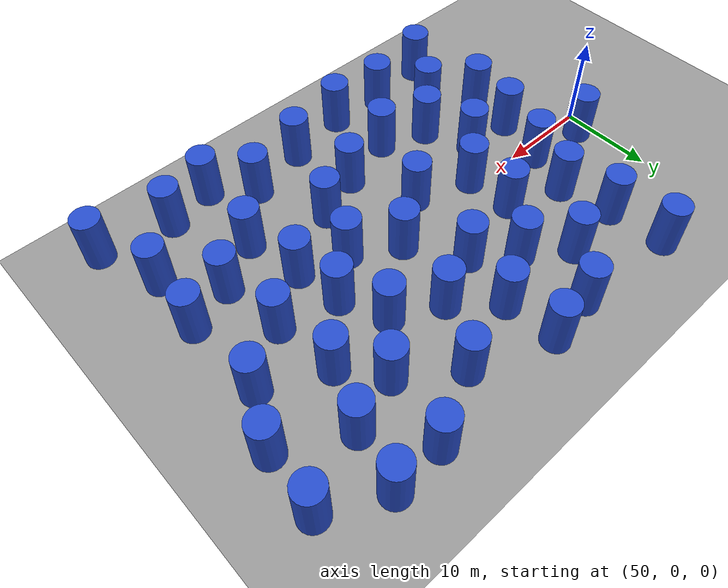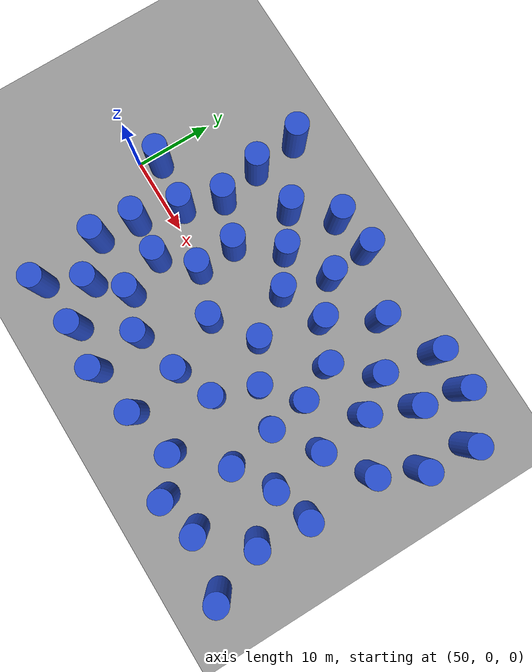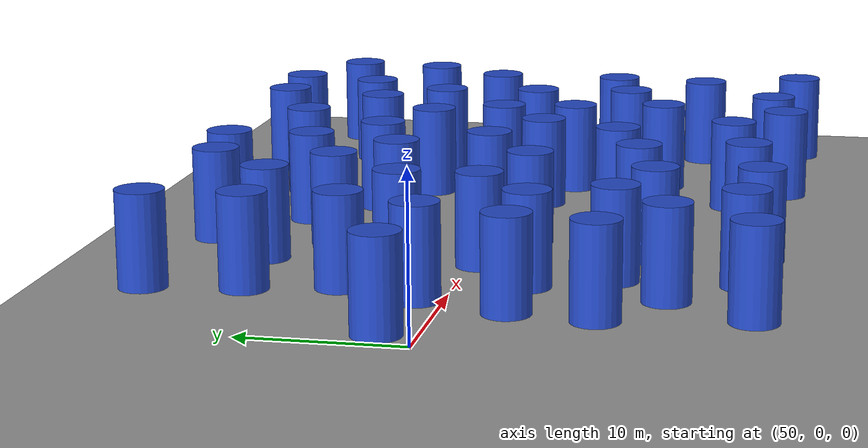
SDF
<sdf version="1.7">
 <world name="default">
  <model name="ground_plane_map">
   <static>1</static>
   <link name="link">
    <collision name="collision">
     <geometry><plane><normal>0 0 1</normal><size>110 50</size></plane></geometry>
     <surface>
      <contact><collide_without_contact>1</collide_without_contact></contact>
      <friction><ode><mu>100</mu><mu2>50</mu2></ode></friction>
     </surface>
    </collision>
    <visual name="visual">
     <cast_shadows>0</cast_shadows>
     <geometry><plane><normal>0 0 1</normal><size>110 50</size></plane></geometry>
     <material>
      <script><uri>file://media/materials/scripts/gazebo.material</uri><name>Gazebo/Grey</name></script>
     </material>
    </visual>
   </link>
   <pose>53 0 0 0 -0 0</pose>
  </model>
  <model name="1">
   <static>1</static>
   <link name="link">
    <inertial>
     <mass>2</mass>
     <inertia><ixx>7.125</ixx><ixy>0</ixy><ixz>0</ixz><iyy>7.125</iyy><iyz>0</iyz><izz>2.25</izz></inertia>
    </inertial>
    <collision name="collision">
     <geometry><cylinder><length>6</length><radius>1.5</radius></cylinder></geometry>
     <surface><contact><collide_without_contact>1</collide_without_contact></contact></surface>
    </collision>
    <visual name="visual">
     <geometry><cylinder><length>6</length><radius>1.5</radius></cylinder></geometry>
     <material>
      <script><uri>file://media/materials/scripts/gazebo.material</uri><name>Gazebo/Blue</name></script>
     </material>
    </visual>
    <gravity>0</gravity>
   </link>
   <pose>80.5285 -7.27743 3 0 -0 0</pose>
  </model>
  <model name="2">
   <static>1</static>
   <link name="link">
    <inertial>
     <mass>2</mass>
     <inertia><ixx>7.125</ixx><ixy>0</ixy><ixz>0</ixz><iyy>7.125</iyy><iyz>0</iyz><izz>2.25</izz></inertia>
    </inertial>
    <collision name="collision">
     <geometry><cylinder><length>6</length><radius>1.5</radius></cylinder></geometry>
     <surface><contact><collide_without_contact>1</collide_without_contact></contact></surface>
    </collision>
    <visual name="visual">
     <geometry><cylinder><length>6</length><radius>1.5</radius></cylinder></geometry>
     <material>
      <script><uri>file://media/materials/scripts/gazebo.material</uri><name>Gazebo/Blue</name></script>
     </material>
    </visual>
    <gravity>0</gravity>
   </link>
   <pose>92.587 0.173414 3 0 -0 0</pose>
  </model>
  <model name="3">
   <static>1</static>
   <link name="link">
    <inertial>
     <mass>2</mass>
     <inertia><ixx>7.125</ixx><ixy>0</ixy><ixz>0</ixz><iyy>7.125</iyy><iyz>0</iyz><izz>2.25</izz></inertia>
    </inertial>
    <collision name="collision">
     <geometry><cylinder><length>6</length><radius>1.5</radius></cylinder></geometry>
     <surface><contact><collide_without_contact>1</collide_without_contact></contact></surface>
    </collision>
    <visual name="visual">
     <geometry><cylinder><length>6</length><radius>1.5</radius></cylinder></geometry>
     <material>
      <script><uri>file://media/materials/scripts/gazebo.material</uri><name>Gazebo/Blue</name></script>
     </material>
    </visual>
    <gravity>0</gravity>
   </link>
   <pose>64.4818 -9.23127 3 0 -0 0</pose>
  </model>
  <model name="4">
   <static>1</static>
   <link name="link">
    <inertial>
     <mass>2</mass>
     <inertia><ixx>7.125</ixx><ixy>0</ixy><ixz>0</ixz><iyy>7.125</iyy><iyz>0</iyz><izz>2.25</izz></inertia>
    </inertial>
    <collision name="collision">
     <geometry><cylinder><length>6</length><radius>1.5</radius></cylinder></geometry>
     <surface><contact><collide_without_contact>1</collide_without_contact></contact></surface>
    </collision>
    <visual name="visual">
     <geometry><cylinder><length>6</length><radius>1.5</radius></cylinder></geometry>
     <material>
      <script><uri>file://media/materials/scripts/gazebo.material</uri><name>Gazebo/Blue</name></script>
     </material>
    </visual>
    <gravity>0</gravity>
   </link>
   <pose>83.0911 14.8801 3 0 -0 0</pose>
  </model>
  <model name="5">
   <static>1</static>
   <link name="link">
    <inertial>
     <mass>2</mass>
     <inertia><ixx>7.125</ixx><ixy>0</ixy><ixz>0</ixz><iyy>7.125</iyy><iyz>0</iyz><izz>2.25</izz></inertia>
    </inertial>
    <collision name="collision">
     <geometry><cylinder><length>6</length><radius>1.5</radius></cylinder></geometry>
     <surface><contact><collide_without_contact>1</collide_without_contact></contact></surface>
    </collision>
    <visual name="visual">
     <geometry><cylinder><length>6</length><radius>1.5</radius></cylinder></geometry>
     <material>
      <script><uri>file://media/materials/scripts/gazebo.material</uri><name>Gazebo/Blue</name></script>
     </material>
    </visual>
    <gravity>0</gravity>
   </link>
   <pose>91.6873 6.80741 3 0 -0 0</pose>
  </model>
  <model name="8">
   <static>1</static>
   <link name="link">
    <inertial>
     <mass>2</mass>
     <inertia><ixx>7.125</ixx><ixy>0</ixy><ixz>0</ixz><iyy>7.125</iyy><iyz>0</iyz><izz>2.25</izz></inertia>
    </inertial>
    <collision name="collision">
     <geometry><cylinder><length>6</length><radius>1.5</radius></cylinder></geometry>
     <surface><contact><collide_without_contact>1</collide_without_contact></contact></surface>
    </collision>
    <visual name="visual">
     <geometry><cylinder><length>6</length><radius>1.5</radius></cylinder></geometry>
     <material>
      <script><uri>file://media/materials/scripts/gazebo.material</uri><name>Gazebo/Blue</name></script>
     </material>
    </visual>
    <gravity>0</gravity>
   </link>
   <pose>57.7238 -17.9805 3 0 -0 0</pose>
  </model>
  <model name="9">
   <static>1</static>
   <link name="link">
    <inertial>
     <mass>2</mass>
     <inertia><ixx>7.125</ixx><ixy>0</ixy><ixz>0</ixz><iyy>7.125</iyy><iyz>0</iyz><izz>2.25</izz></inertia>
    </inertial>
    <collision name="collision">
     <geometry><cylinder><length>6</length><radius>1.5</radius></cylinder></geometry>
     <surface><contact><collide_without_contact>1</collide_without_contact></contact></surface>
    </collision>
    <visual name="visual">
     <geometry><cylinder><length>6</length><radius>1.5</radius></cylinder></geometry>
     <material>
      <script><uri>file://media/materials/scripts/gazebo.material</uri><name>Gazebo/Blue</name></script>
     </material>
    </visual>
    <gravity>0</gravity>
   </link>
   <pose>84.51 6.22167 3 0 -0 0</pose>
  </model>
  <model name="10">
   <static>1</static>
   <link name="link">
    <inertial>
     <mass>2</mass>
     <inertia><ixx>7.125</ixx><ixy>0</ixy><ixz>0</ixz><iyy>7.125</iyy><iyz>0</iyz><izz>2.25</izz></inertia>
    </inertial>
    <collision name="collision">
     <geometry><cylinder><length>6</length><radius>1.5</radius></cylinder></geometry>
     <surface><contact><collide_without_contact>1</collide_without_contact></contact></surface>
    </collision>
    <visual name="visual">
     <geometry><cylinder><length>6</length><radius>1.5</radius></cylinder></geometry>
     <material>
      <script><uri>file://media/materials/scripts/gazebo.material</uri><name>Gazebo/Blue</name></script>
     </material>
    </visual>
    <gravity>0</gravity>
   </link>
   <pose>88.6575 -9.4753 3 0 -0 0</pose>
  </model>
  <model name="12">
   <static>1</static>
   <link name="link">
    <inertial>
     <mass>2</mass>
     <inertia><ixx>7.125</ixx><ixy>0</ixy><ixz>0</ixz><iyy>7.125</iyy><iyz>0</iyz><izz>2.25</izz></inertia>
    </inertial>
    <collision name="collision">
     <geometry><cylinder><length>6</length><radius>1.5</radius></cylinder></geometry>
     <surface><contact><collide_without_contact>1</collide_without_contact></contact></surface>
    </collision>
    <visual name="visual">
     <geometry><cylinder><length>6</length><radius>1.5</radius></cylinder></geometry>
     <material>
      <script><uri>file://media/materials/scripts/gazebo.material</uri><name>Gazebo/Blue</name></script>
     </material>
    </visual>
    <gravity>0</gravity>
   </link>
   <pose>82.4084 -1.92513 3 0 -0 0</pose>
  </model>
  <model name="14">
   <static>1</static>
   <link name="link">
    <inertial>
     <mass>2</mass>
     <inertia><ixx>7.125</ixx><ixy>0</ixy><ixz>0</ixz><iyy>7.125</iyy><iyz>0</iyz><izz>2.25</izz></inertia>
    </inertial>
    <collision name="collision">
     <geometry><cylinder><length>6</length><radius>1.5</radius></cylinder></geometry>
     <surface><contact><collide_without_contact>1</collide_without_contact></contact></surface>
    </collision>
    <visual name="visual">
     <geometry><cylinder><length>6</length><radius>1.5</radius></cylinder></geometry>
     <material>
      <script><uri>file://media/materials/scripts/gazebo.material</uri><name>Gazebo/Blue</name></script>
     </material>
    </visual>
    <gravity>0</gravity>
   </link>
   <pose>97.9923 3.81787 3 0 -0 0</pose>
  </model>
  <model name="15">
   <static>1</static>
   <link name="link">
    <inertial>
     <mass>2</mass>
     <inertia><ixx>7.125</ixx><ixy>0</ixy><ixz>0</ixz><iyy>7.125</iyy><iyz>0</iyz><izz>2.25</izz></inertia>
    </inertial>
    <collision name="collision">
     <geometry><cylinder><length>6</length><radius>1.5</radius></cylinder></geometry>
     <surface><contact><collide_without_contact>1</collide_without_contact></contact></surface>
    </collision>
    <visual name="visual">
     <geometry><cylinder><length>6</length><radius>1.5</radius></cylinder></geometry>
     <material>
      <script><uri>file://media/materials/scripts/gazebo.material</uri><name>Gazebo/Blue</name></script>
     </material>
    </visual>
    <gravity>0</gravity>
   </link>
   <pose>62.3398 -4.25866 3 0 -0 0</pose>
  </model>
  <model name="18">
   <static>1</static>
   <link name="link">
    <inertial>
     <mass>2</mass>
     <inertia><ixx>7.125</ixx><ixy>0</ixy><ixz>0</ixz><iyy>7.125</iyy><iyz>0</iyz><izz>2.25</izz></inertia>
    </inertial>
    <collision name="collision">
     <geometry><cylinder><length>6</length><radius>1.5</radius></cylinder></geometry>
     <surface><contact><collide_without_contact>1</collide_without_contact></contact></surface>
    </collision>
    <visual name="visual">
     <geometry><cylinder><length>6</length><radius>1.5</radius></cylinder></geometry>
     <material>
      <script><uri>file://media/materials/scripts/gazebo.material</uri><name>Gazebo/Blue</name></script>
     </material>
    </visual>
    <gravity>0</gravity>
   </link>
   <pose>94.068 12.671 3 0 -0 0</pose>
  </model>
  <model name="19">
   <static>1</static>
   <link name="link">
    <inertial>
     <mass>2</mass>
     <inertia><ixx>7.125</ixx><ixy>0</ixy><ixz>0</ixz><iyy>7.125</iyy><iyz>0</iyz><izz>2.25</izz></inertia>
    </inertial>
    <collision name="collision">
     <geometry><cylinder><length>6</length><radius>1.5</radius></cylinder></geometry>
     <surface><contact><collide_without_contact>1</collide_without_contact></contact></surface>
    </collision>
    <visual name="visual">
     <geometry><cylinder><length>6</length><radius>1.5</radius></cylinder></geometry>
     <material>
      <script><uri>file://media/materials/scripts/gazebo.material</uri><name>Gazebo/Blue</name></script>
     </material>
    </visual>
    <gravity>0</gravity>
   </link>
   <pose>56.9382 -4.02205 3 0 -0 0</pose>
  </model>
  <model name="20">
   <static>1</static>
   <link name="link">
    <inertial>
     <mass>2</mass>
     <inertia><ixx>7.125</ixx><ixy>0</ixy><ixz>0</ixz><iyy>7.125</iyy><iyz>0</iyz><izz>2.25</izz></inertia>
    </inertial>
    <collision name="collision">
     <geometry><cylinder><length>6</length><radius>1.5</radius></cylinder></geometry>
     <surface><contact><collide_without_contact>1</collide_without_contact></contact></surface>
    </collision>
    <visual name="visual">
     <geometry><cylinder><length>6</length><radius>1.5</radius></cylinder></geometry>
     <material>
      <script><uri>file://media/materials/scripts/gazebo.material</uri><name>Gazebo/Blue</name></script>
     </material>
    </visual>
    <gravity>0</gravity>
   </link>
   <pose>101.137 15.4268 3 0 -0 0</pose>
  </model>
  <model name="21">
   <static>1</static>
   <link name="link">
    <inertial>
     <mass>2</mass>
     <inertia><ixx>7.125</ixx><ixy>0</ixy><ixz>0</ixz><iyy>7.125</iyy><iyz>0</iyz><izz>2.25</izz></inertia>
    </inertial>
    <collision name="collision">
     <geometry><cylinder><length>6</length><radius>1.5</radius></cylinder></geometry>
     <surface><contact><collide_without_contact>1</collide_without_contact></contact></surface>
    </collision>
    <visual name="visual">
     <geometry><cylinder><length>6</length><radius>1.5</radius></cylinder></geometry>
     <material>
      <script><uri>file://media/materials/scripts/gazebo.material</uri><name>Gazebo/Blue</name></script>
     </material>
    </visual>
    <gravity>0</gravity>
   </link>
   <pose>65.6243 12.7679 3 0 -0 0</pose>
  </model>
  <model name="23">
   <static>1</static>
   <link name="link">
    <inertial>
     <mass>2</mass>
     <inertia><ixx>7.125</ixx><ixy>0</ixy><ixz>0</ixz><iyy>7.125</iyy><iyz>0</iyz><izz>2.25</izz></inertia>
    </inertial>
    <collision name="collision">
     <geometry><cylinder><length>6</length><radius>1.5</radius></cylinder></geometry>
     <surface><contact><collide_without_contact>1</collide_without_contact></contact></surface>
    </collision>
    <visual name="visual">
     <geometry><cylinder><length>6</length><radius>1.5</radius></cylinder></geometry>
     <material>
      <script><uri>file://media/materials/scripts/gazebo.material</uri><name>Gazebo/Blue</name></script>
     </material>
    </visual>
    <gravity>0</gravity>
   </link>
   <pose>83.6436 -14.7775 3 0 -0 0</pose>
  </model>
  <model name="25">
   <static>1</static>
   <link name="link">
    <inertial>
     <mass>2</mass>
     <inertia><ixx>7.125</ixx><ixy>0</ixy><ixz>0</ixz><iyy>7.125</iyy><iyz>0</iyz><izz>2.25</izz></inertia>
    </inertial>
    <collision name="collision">
     <geometry><cylinder><length>6</length><radius>1.5</radius></cylinder></geometry>
     <surface><contact><collide_without_contact>1</collide_without_contact></contact></surface>
    </collision>
    <visual name="visual">
     <geometry><cylinder><length>6</length><radius>1.5</radius></cylinder></geometry>
     <material>
      <script><uri>file://media/materials/scripts/gazebo.material</uri><name>Gazebo/Blue</name></script>
     </material>
    </visual>
    <gravity>0</gravity>
   </link>
   <pose>70.5171 -17.5122 3 0 -0 0</pose>
  </model>
  <model name="27">
   <static>1</static>
   <link name="link">
    <inertial>
     <mass>2</mass>
     <inertia><ixx>7.125</ixx><ixy>0</ixy><ixz>0</ixz><iyy>7.125</iyy><iyz>0</iyz><izz>2.25</izz></inertia>
    </inertial>
    <collision name="collision">
     <geometry><cylinder><length>6</length><radius>1.5</radius></cylinder></geometry>
     <surface><contact><collide_without_contact>1</collide_without_contact></contact></surface>
    </collision>
    <visual name="visual">
     <geometry><cylinder><length>6</length><radius>1.5</radius></cylinder></geometry>
     <material>
      <script><uri>file://media/materials/scripts/gazebo.material</uri><name>Gazebo/Blue</name></script>
     </material>
    </visual>
    <gravity>0</gravity>
   </link>
   <pose>97.72 -11.656 3 0 -0 0</pose>
  </model>
  <model name="31">
   <static>1</static>
   <link name="link">
    <inertial>
     <mass>2</mass>
     <inertia><ixx>7.125</ixx><ixy>0</ixy><ixz>0</ixz><iyy>7.125</iyy><iyz>0</iyz><izz>2.25</izz></inertia>
    </inertial>
    <collision name="collision">
     <geometry><cylinder><length>6</length><radius>1.5</radius></cylinder></geometry>
     <surface><contact><collide_without_contact>1</collide_without_contact></contact></surface>
    </collision>
    <visual name="visual">
     <geometry><cylinder><length>6</length><radius>1.5</radius></cylinder></geometry>
     <material>
      <script><uri>file://media/materials/scripts/gazebo.material</uri><name>Gazebo/Blue</name></script>
     </material>
    </visual>
    <gravity>0</gravity>
   </link>
   <pose>75.465 12.5181 3 0 -0 0</pose>
  </model>
  <model name="32">
   <static>1</static>
   <link name="link">
    <inertial>
     <mass>2</mass>
     <inertia><ixx>7.125</ixx><ixy>0</ixy><ixz>0</ixz><iyy>7.125</iyy><iyz>0</iyz><izz>2.25</izz></inertia>
    </inertial>
    <collision name="collision">
     <geometry><cylinder><length>6</length><radius>1.5</radius></cylinder></geometry>
     <surface><contact><collide_without_contact>1</collide_without_contact></contact></surface>
    </collision>
    <visual name="visual">
     <geometry><cylinder><length>6</length><radius>1.5</radius></cylinder></geometry>
     <material>
      <script><uri>file://media/materials/scripts/gazebo.material</uri><name>Gazebo/Blue</name></script>
     </material>
    </visual>
    <gravity>0</gravity>
   </link>
   <pose>69.7461 17.2623 3 0 -0 0</pose>
  </model>
  <model name="37">
   <static>1</static>
   <link name="link">
    <inertial>
     <mass>2</mass>
     <inertia><ixx>7.125</ixx><ixy>0</ixy><ixz>0</ixz><iyy>7.125</iyy><iyz>0</iyz><izz>2.25</izz></inertia>
    </inertial>
    <collision name="collision">
     <geometry><cylinder><length>6</length><radius>1.5</radius></cylinder></geometry>
     <surface><contact><collide_without_contact>1</collide_without_contact></contact></surface>
    </collision>
    <visual name="visual">
     <geometry><cylinder><length>6</length><radius>1.5</radius></cylinder></geometry>
     <material>
      <script><uri>file://media/materials/scripts/gazebo.material</uri><name>Gazebo/Blue</name></script>
     </material>
    </visual>
    <gravity>0</gravity>
   </link>
   <pose>65.9735 4.47984 3 0 -0 0</pose>
  </model>
  <model name="40">
   <static>1</static>
   <link name="link">
    <inertial>
     <mass>2</mass>
     <inertia><ixx>7.125</ixx><ixy>0</ixy><ixz>0</ixz><iyy>7.125</iyy><iyz>0</iyz><izz>2.25</izz></inertia>
    </inertial>
    <collision name="collision">
     <geometry><cylinder><length>6</length><radius>1.5</radius></cylinder></geometry>
     <surface><contact><collide_without_contact>1</collide_without_contact></contact></surface>
    </collision>
    <visual name="visual">
     <geometry><cylinder><length>6</length><radius>1.5</radius></cylinder></geometry>
     <material>
      <script><uri>file://media/materials/scripts/gazebo.material</uri><name>Gazebo/Blue</name></script>
     </material>
    </visual>
    <gravity>0</gravity>
   </link>
   <pose>51.7648 2.27198 3 0 -0 0</pose>
  </model>
  <model name="42">
   <static>1</static>
   <link name="link">
    <inertial>
     <mass>2</mass>
     <inertia><ixx>7.125</ixx><ixy>0</ixy><ixz>0</ixz><iyy>7.125</iyy><iyz>0</iyz><izz>2.25</izz></inertia>
    </inertial>
    <collision name="collision">
     <geometry><cylinder><length>6</length><radius>1.5</radius></cylinder></geometry>
     <surface><contact><collide_without_contact>1</collide_without_contact></contact></surface>
    </collision>
    <visual name="visual">
     <geometry><cylinder><length>6</length><radius>1.5</radius></cylinder></geometry>
     <material>
      <script><uri>file://media/materials/scripts/gazebo.material</uri><name>Gazebo/Blue</name></script>
     </material>
    </visual>
    <gravity>0</gravity>
   </link>
   <pose>74.8788 18.0124 3 0 -0 0</pose>
  </model>
  <model name="46">
   <static>1</static>
   <link name="link">
    <inertial>
     <mass>2</mass>
     <inertia><ixx>7.125</ixx><ixy>0</ixy><ixz>0</ixz><iyy>7.125</iyy><iyz>0</iyz><izz>2.25</izz></inertia>
    </inertial>
    <collision name="collision">
     <geometry><cylinder><length>6</length><radius>1.5</radius></cylinder></geometry>
     <surface><contact><collide_without_contact>1</collide_without_contact></contact></surface>
    </collision>
    <visual name="visual">
     <geometry><cylinder><length>6</length><radius>1.5</radius></cylinder></geometry>
     <material>
      <script><uri>file://media/materials/scripts/gazebo.material</uri><name>Gazebo/Blue</name></script>
     </material>
    </visual>
    <gravity>0</gravity>
   </link>
   <pose>92.7556 -16.9458 3 0 -0 0</pose>
  </model>
  <model name="49">
   <static>1</static>
   <link name="link">
    <inertial>
     <mass>2</mass>
     <inertia><ixx>7.125</ixx><ixy>0</ixy><ixz>0</ixz><iyy>7.125</iyy><iyz>0</iyz><izz>2.25</izz></inertia>
    </inertial>
    <collision name="collision">
     <geometry><cylinder><length>6</length><radius>1.5</radius></cylinder></geometry>
     <surface><contact><collide_without_contact>1</collide_without_contact></contact></surface>
    </collision>
    <visual name="visual">
     <geometry><cylinder><length>6</length><radius>1.5</radius></cylinder></geometry>
     <material>
      <script><uri>file://media/materials/scripts/gazebo.material</uri><name>Gazebo/Blue</name></script>
     </material>
    </visual>
    <gravity>0</gravity>
   </link>
   <pose>64.6922 -16.9755 3 0 -0 0</pose>
  </model>
  <model name="51">
   <static>1</static>
   <link name="link">
    <inertial>
     <mass>2</mass>
     <inertia><ixx>7.125</ixx><ixy>0</ixy><ixz>0</ixz><iyy>7.125</iyy><iyz>0</iyz><izz>2.25</izz></inertia>
    </inertial>
    <collision name="collision">
     <geometry><cylinder><length>6</length><radius>1.5</radius></cylinder></geometry>
     <surface><contact><collide_without_contact>1</collide_without_contact></contact></surface>
    </collision>
    <visual name="visual">
     <geometry><cylinder><length>6</length><radius>1.5</radius></cylinder></geometry>
     <material>
      <script><uri>file://media/materials/scripts/gazebo.material</uri><name>Gazebo/Blue</name></script>
     </material>
    </visual>
    <gravity>0</gravity>
   </link>
   <pose>72.3607 -2.71819 3 0 -0 0</pose>
  </model>
  <model name="52">
   <static>1</static>
   <link name="link">
    <inertial>
     <mass>2</mass>
     <inertia><ixx>7.125</ixx><ixy>0</ixy><ixz>0</ixz><iyy>7.125</iyy><iyz>0</iyz><izz>2.25</izz></inertia>
    </inertial>
    <collision name="collision">
     <geometry><cylinder><length>6</length><radius>1.5</radius></cylinder></geometry>
     <surface><contact><collide_without_contact>1</collide_without_contact></contact></surface>
    </collision>
    <visual name="visual">
     <geometry><cylinder><length>6</length><radius>1.5</radius></cylinder></geometry>
     <material>
      <script><uri>file://media/materials/scripts/gazebo.material</uri><name>Gazebo/Blue</name></script>
     </material>
    </visual>
    <gravity>0</gravity>
   </link>
   <pose>77.2373 -16.2372 3 0 -0 0</pose>
  </model>
  <model name="56">
   <static>1</static>
   <link name="link">
    <inertial>
     <mass>2</mass>
     <inertia><ixx>7.125</ixx><ixy>0</ixy><ixz>0</ixz><iyy>7.125</iyy><iyz>0</iyz><izz>2.25</izz></inertia>
    </inertial>
    <collision name="collision">
     <geometry><cylinder><length>6</length><radius>1.5</radius></cylinder></geometry>
     <surface><contact><collide_without_contact>1</collide_without_contact></contact></surface>
    </collision>
    <visual name="visual">
     <geometry><cylinder><length>6</length><radius>1.5</radius></cylinder></geometry>
     <material>
      <script><uri>file://media/materials/scripts/gazebo.material</uri><name>Gazebo/Blue</name></script>
     </material>
    </visual>
    <gravity>0</gravity>
   </link>
   <pose>93.4535 -6.56897 3 0 -0 0</pose>
  </model>
  <model name="57">
   <static>1</static>
   <link name="link">
    <inertial>
     <mass>2</mass>
     <inertia><ixx>7.125</ixx><ixy>0</ixy><ixz>0</ixz><iyy>7.125</iyy><iyz>0</iyz><izz>2.25</izz></inertia>
    </inertial>
    <collision name="collision">
     <geometry><cylinder><length>6</length><radius>1.5</radius></cylinder></geometry>
     <surface><contact><collide_without_contact>1</collide_without_contact></contact></surface>
    </collision>
    <visual name="visual">
     <geometry><cylinder><length>6</length><radius>1.5</radius></cylinder></geometry>
     <material>
      <script><uri>file://media/materials/scripts/gazebo.material</uri><name>Gazebo/Blue</name></script>
     </material>
    </visual>
    <gravity>0</gravity>
   </link>
   <pose>69.4966 -11.0263 3 0 -0 0</pose>
  </model>
  <model name="60">
   <static>1</static>
   <link name="link">
    <inertial>
     <mass>2</mass>
     <inertia><ixx>7.125</ixx><ixy>0</ixy><ixz>0</ixz><iyy>7.125</iyy><iyz>0</iyz><izz>2.25</izz></inertia>
    </inertial>
    <collision name="collision">
     <geometry><cylinder><length>6</length><radius>1.5</radius></cylinder></geometry>
     <surface><contact><collide_without_contact>1</collide_without_contact></contact></surface>
    </collision>
    <visual name="visual">
     <geometry><cylinder><length>6</length><radius>1.5</radius></cylinder></geometry>
     <material>
      <script><uri>file://media/materials/scripts/gazebo.material</uri><name>Gazebo/Blue</name></script>
     </material>
    </visual>
    <gravity>0</gravity>
   </link>
   <pose>60.1656 6.60714 3 0 -0 0</pose>
  </model>
  <model name="61">
   <static>1</static>
   <link name="link">
    <inertial>
     <mass>2</mass>
     <inertia><ixx>7.125</ixx><ixy>0</ixy><ixz>0</ixz><iyy>7.125</iyy><iyz>0</iyz><izz>2.25</izz></inertia>
    </inertial>
    <collision name="collision">
     <geometry><cylinder><length>6</length><radius>1.5</radius></cylinder></geometry>
     <surface><contact><collide_without_contact>1</collide_without_contact></contact></surface>
    </collision>
    <visual name="visual">
     <geometry><cylinder><length>6</length><radius>1.5</radius></cylinder></geometry>
     <material>
      <script><uri>file://media/materials/scripts/gazebo.material</uri><name>Gazebo/Blue</name></script>
     </material>
    </visual>
    <gravity>0</gravity>
   </link>
   <pose>100.582 9.13772 3 0 -0 0</pose>
  </model>
  <model name="63">
   <static>1</static>
   <link name="link">
    <inertial>
     <mass>2</mass>
     <inertia><ixx>7.125</ixx><ixy>0</ixy><ixz>0</ixz><iyy>7.125</iyy><iyz>0</iyz><izz>2.25</izz></inertia>
    </inertial>
    <collision name="collision">
     <geometry><cylinder><length>6</length><radius>1.5</radius></cylinder></geometry>
     <surface><contact><collide_without_contact>1</collide_without_contact></contact></surface>
    </collision>
    <visual name="visual">
     <geometry><cylinder><length>6</length><radius>1.5</radius></cylinder></geometry>
     <material>
      <script><uri>file://media/materials/scripts/gazebo.material</uri><name>Gazebo/Blue</name></script>
     </material>
    </visual>
    <gravity>0</gravity>
   </link>
   <pose>74.0673 6.42112 3 0 -0 0</pose>
  </model>
  <model name="65">
   <static>1</static>
   <link name="link">
    <inertial>
     <mass>2</mass>
     <inertia><ixx>7.125</ixx><ixy>0</ixy><ixz>0</ixz><iyy>7.125</iyy><iyz>0</iyz><izz>2.25</izz></inertia>
    </inertial>
    <collision name="collision">
     <geometry><cylinder><length>6</length><radius>1.5</radius></cylinder></geometry>
     <surface><contact><collide_without_contact>1</collide_without_contact></contact></surface>
    </collision>
    <visual name="visual">
     <geometry><cylinder><length>6</length><radius>1.5</radius></cylinder></geometry>
     <material>
      <script><uri>file://media/materials/scripts/gazebo.material</uri><name>Gazebo/Blue</name></script>
     </material>
    </visual>
    <gravity>0</gravity>
   </link>
   <pose>79.5604 8.66834 3 0 -0 0</pose>
  </model>
  <model name="67">
   <static>1</static>
   <link name="link">
    <inertial>
     <mass>2</mass>
     <inertia><ixx>7.125</ixx><ixy>0</ixy><ixz>0</ixz><iyy>7.125</iyy><iyz>0</iyz><izz>2.25</izz></inertia>
    </inertial>
    <collision name="collision">
     <geometry><cylinder><length>6</length><radius>1.5</radius></cylinder></geometry>
     <surface><contact><collide_without_contact>1</collide_without_contact></contact></surface>
    </collision>
    <visual name="visual">
     <geometry><cylinder><length>6</length><radius>1.5</radius></cylinder></geometry>
     <material>
      <script><uri>file://media/materials/scripts/gazebo.material</uri><name>Gazebo/Blue</name></script>
     </material>
    </visual>
    <gravity>0</gravity>
   </link>
   <pose>98.2524 -5.09713 3 0 -0 0</pose>
  </model>
  <model name="68">
   <static>1</static>
   <link name="link">
    <inertial>
     <mass>2</mass>
     <inertia><ixx>7.125</ixx><ixy>0</ixy><ixz>0</ixz><iyy>7.125</iyy><iyz>0</iyz><izz>2.25</izz></inertia>
    </inertial>
    <collision name="collision">
     <geometry><cylinder><length>6</length><radius>1.5</radius></cylinder></geometry>
     <surface><contact><collide_without_contact>1</collide_without_contact></contact></surface>
    </collision>
    <visual name="visual">
     <geometry><cylinder><length>6</length><radius>1.5</radius></cylinder></geometry>
     <material>
      <script><uri>file://media/materials/scripts/gazebo.material</uri><name>Gazebo/Blue</name></script>
     </material>
    </visual>
    <gravity>0</gravity>
   </link>
   <pose>60.8424 -12.7131 3 0 -0 0</pose>
  </model>
  <model name="69">
   <static>1</static>
   <link name="link">
    <inertial>
     <mass>2</mass>
     <inertia><ixx>7.125</ixx><ixy>0</ixy><ixz>0</ixz><iyy>7.125</iyy><iyz>0</iyz><izz>2.25</izz></inertia>
    </inertial>
    <collision name="collision">
     <geometry><cylinder><length>6</length><radius>1.5</radius></cylinder></geometry>
     <surface><contact><collide_without_contact>1</collide_without_contact></contact></surface>
    </collision>
    <visual name="visual">
     <geometry><cylinder><length>6</length><radius>1.5</radius></cylinder></geometry>
     <material>
      <script><uri>file://media/materials/scripts/gazebo.material</uri><name>Gazebo/Blue</name></script>
     </material>
    </visual>
    <gravity>0</gravity>
   </link>
   <pose>66.3184 -0.618344 3 0 -0 0</pose>
  </model>
  <model name="75">
   <static>1</static>
   <link name="link">
    <inertial>
     <mass>2</mass>
     <inertia><ixx>7.125</ixx><ixy>0</ixy><ixz>0</ixz><iyy>7.125</iyy><iyz>0</iyz><izz>2.25</izz></inertia>
    </inertial>
    <collision name="collision">
     <geometry><cylinder><length>6</length><radius>1.5</radius></cylinder></geometry>
     <surface><contact><collide_without_contact>1</collide_without_contact></contact></surface>
    </collision>
    <visual name="visual">
     <geometry><cylinder><length>6</length><radius>1.5</radius></cylinder></geometry>
     <material>
      <script><uri>file://media/materials/scripts/gazebo.material</uri><name>Gazebo/Blue</name></script>
     </material>
    </visual>
    <gravity>0</gravity>
   </link>
   <pose>75.5898 -9.29537 3 0 -0 0</pose>
  </model>
  <model name="78">
   <static>1</static>
   <link name="link">
    <inertial>
     <mass>2</mass>
     <inertia><ixx>7.125</ixx><ixy>0</ixy><ixz>0</ixz><iyy>7.125</iyy><iyz>0</iyz><izz>2.25</izz></inertia>
    </inertial>
    <collision name="collision">
     <geometry><cylinder><length>6</length><radius>1.5</radius></cylinder></geometry>
     <surface><contact><collide_without_contact>1</collide_without_contact></contact></surface>
    </collision>
    <visual name="visual">
     <geometry><cylinder><length>6</length><radius>1.5</radius></cylinder></geometry>
     <material>
      <script><uri>file://media/materials/scripts/gazebo.material</uri><name>Gazebo/Blue</name></script>
     </material>
    </visual>
    <gravity>0</gravity>
   </link>
   <pose>100.285 -18.4625 3 0 -0 0</pose>
  </model>
  <model name="80">
   <static>1</static>
   <link name="link">
    <inertial>
     <mass>2</mass>
     <inertia><ixx>7.125</ixx><ixy>0</ixy><ixz>0</ixz><iyy>7.125</iyy><iyz>0</iyz><izz>2.25</izz></inertia>
    </inertial>
    <collision name="collision">
     <geometry><cylinder><length>6</length><radius>1.5</radius></cylinder></geometry>
     <surface><contact><collide_without_contact>1</collide_without_contact></contact></surface>
    </collision>
    <visual name="visual">
     <geometry><cylinder><length>6</length><radius>1.5</radius></cylinder></geometry>
     <material>
      <script><uri>file://media/materials/scripts/gazebo.material</uri><name>Gazebo/Blue</name></script>
     </material>
    </visual>
    <gravity>0</gravity>
   </link>
   <pose>58.2923 18.1333 3 0 -0 0</pose>
  </model>
  <model name="81">
   <static>1</static>
   <link name="link">
    <inertial>
     <mass>2</mass>
     <inertia><ixx>7.125</ixx><ixy>0</ixy><ixz>0</ixz><iyy>7.125</iyy><iyz>0</iyz><izz>2.25</izz></inertia>
    </inertial>
    <collision name="collision">
     <geometry><cylinder><length>6</length><radius>1.5</radius></cylinder></geometry>
     <surface><contact><collide_without_contact>1</collide_without_contact></contact></surface>
    </collision>
    <visual name="visual">
     <geometry><cylinder><length>6</length><radius>1.5</radius></cylinder></geometry>
     <material>
      <script><uri>file://media/materials/scripts/gazebo.material</uri><name>Gazebo/Blue</name></script>
     </material>
    </visual>
    <gravity>0</gravity>
   </link>
   <pose>95.245 18.4461 3 0 -0 0</pose>
  </model>
  <model name="82">
   <static>1</static>
   <link name="link">
    <inertial>
     <mass>2</mass>
     <inertia><ixx>7.125</ixx><ixy>0</ixy><ixz>0</ixz><iyy>7.125</iyy><iyz>0</iyz><izz>2.25</izz></inertia>
    </inertial>
    <collision name="collision">
     <geometry><cylinder><length>6</length><radius>1.5</radius></cylinder></geometry>
     <surface><contact><collide_without_contact>1</collide_without_contact></contact></surface>
    </collision>
    <visual name="visual">
     <geometry><cylinder><length>6</length><radius>1.5</radius></cylinder></geometry>
     <material>
      <script><uri>file://media/materials/scripts/gazebo.material</uri><name>Gazebo/Blue</name></script>
     </material>
    </visual>
    <gravity>0</gravity>
   </link>
   <pose>58.4242 1.60738 3 0 -0 0</pose>
  </model>
  <model name="84">
   <static>1</static>
   <link name="link">
    <inertial>
     <mass>2</mass>
     <inertia><ixx>7.125</ixx><ixy>0</ixy><ixz>0</ixz><iyy>7.125</iyy><iyz>0</iyz><izz>2.25</izz></inertia>
    </inertial>
    <collision name="collision">
     <geometry><cylinder><length>6</length><radius>1.5</radius></cylinder></geometry>
     <surface><contact><collide_without_contact>1</collide_without_contact></contact></surface>
    </collision>
    <visual name="visual">
     <geometry><cylinder><length>6</length><radius>1.5</radius></cylinder></geometry>
     <material>
      <script><uri>file://media/materials/scripts/gazebo.material</uri><name>Gazebo/Blue</name></script>
     </material>
    </visual>
    <gravity>0</gravity>
   </link>
   <pose>87.3972 -3.37188 3 0 -0 0</pose>
  </model>
  <model name="85">
   <static>1</static>
   <link name="link">
    <inertial>
     <mass>2</mass>
     <inertia><ixx>7.125</ixx><ixy>0</ixy><ixz>0</ixz><iyy>7.125</iyy><iyz>0</iyz><izz>2.25</izz></inertia>
    </inertial>
    <collision name="collision">
     <geometry><cylinder><length>6</length><radius>1.5</radius></cylinder></geometry>
     <surface><contact><collide_without_contact>1</collide_without_contact></contact></surface>
    </collision>
    <visual name="visual">
     <geometry><cylinder><length>6</length><radius>1.5</radius></cylinder></geometry>
     <material>
      <script><uri>file://media/materials/scripts/gazebo.material</uri><name>Gazebo/Blue</name></script>
     </material>
    </visual>
    <gravity>0</gravity>
   </link>
   <pose>89.9078 18.2269 3 0 -0 0</pose>
  </model>
  <model name="86">
   <static>1</static>
   <link name="link">
    <inertial>
     <mass>2</mass>
     <inertia><ixx>7.125</ixx><ixy>0</ixy><ixz>0</ixz><iyy>7.125</iyy><iyz>0</iyz><izz>2.25</izz></inertia>
    </inertial>
    <collision name="collision">
     <geometry><cylinder><length>6</length><radius>1.5</radius></cylinder></geometry>
     <surface><contact><collide_without_contact>1</collide_without_contact></contact></surface>
    </collision>
    <visual name="visual">
     <geometry><cylinder><length>6</length><radius>1.5</radius></cylinder></geometry>
     <material>
      <script><uri>file://media/materials/scripts/gazebo.material</uri><name>Gazebo/Blue</name></script>
     </material>
    </visual>
    <gravity>0</gravity>
   </link>
   <pose>58.9796 12.1079 3 0 -0 0</pose>
  </model>
  <model name="88">
   <static>1</static>
   <link name="link">
    <inertial>
     <mass>2</mass>
     <inertia><ixx>7.125</ixx><ixy>0</ixy><ixz>0</ixz><iyy>7.125</iyy><iyz>0</iyz><izz>2.25</izz></inertia>
    </inertial>
    <collision name="collision">
     <geometry><cylinder><length>6</length><radius>1.5</radius></cylinder></geometry>
     <surface><contact><collide_without_contact>1</collide_without_contact></contact></surface>
    </collision>
    <visual name="visual">
     <geometry><cylinder><length>6</length><radius>1.5</radius></cylinder></geometry>
     <material>
      <script><uri>file://media/materials/scripts/gazebo.material</uri><name>Gazebo/Blue</name></script>
     </material>
    </visual>
    <gravity>0</gravity>
   </link>
   <pose>77.6277 0.942909 3 0 -0 0</pose>
  </model>
  <model name="89">
   <static>1</static>
   <link name="link">
    <inertial>
     <mass>2</mass>
     <inertia><ixx>7.125</ixx><ixy>0</ixy><ixz>0</ixz><iyy>7.125</iyy><iyz>0</iyz><izz>2.25</izz></inertia>
    </inertial>
    <collision name="collision">
     <geometry><cylinder><length>6</length><radius>1.5</radius></cylinder></geometry>
     <surface><contact><collide_without_contact>1</collide_without_contact></contact></surface>
    </collision>
    <visual name="visual">
     <geometry><cylinder><length>6</length><radius>1.5</radius></cylinder></geometry>
     <material>
      <script><uri>file://media/materials/scripts/gazebo.material</uri><name>Gazebo/Blue</name></script>
     </material>
    </visual>
    <gravity>0</gravity>
   </link>
   <pose>88.6672 10.9155 3 0 -0 0</pose>
  </model>
  <model name="90">
   <static>1</static>
   <link name="link">
    <inertial>
     <mass>2</mass>
     <inertia><ixx>7.125</ixx><ixy>0</ixy><ixz>0</ixz><iyy>7.125</iyy><iyz>0</iyz><izz>2.25</izz></inertia>
    </inertial>
    <collision name="collision">
     <geometry><cylinder><length>6</length><radius>1.5</radius></cylinder></geometry>
     <surface><contact><collide_without_contact>1</collide_without_contact></contact></surface>
    </collision>
    <visual name="visual">
     <geometry><cylinder><length>6</length><radius>1.5</radius></cylinder></geometry>
     <material>
      <script><uri>file://media/materials/scripts/gazebo.material</uri><name>Gazebo/Blue</name></script>
     </material>
    </visual>
    <gravity>0</gravity>
   </link>
   <pose>69.9345 9.51439 3 0 -0 0</pose>
  </model>
  <model name="94">
   <static>1</static>
   <link name="link">
    <inertial>
     <mass>2</mass>
     <inertia><ixx>7.125</ixx><ixy>0</ixy><ixz>0</ixz><iyy>7.125</iyy><iyz>0</iyz><izz>2.25</izz></inertia>
    </inertial>
    <collision name="collision">
     <geometry><cylinder><length>6</length><radius>1.5</radius></cylinder></geometry>
     <surface><contact><collide_without_contact>1</collide_without_contact></contact></surface>
    </collision>
    <visual name="visual">
     <geometry><cylinder><length>6</length><radius>1.5</radius></cylinder></geometry>
     <material>
      <script><uri>file://media/materials/scripts/gazebo.material</uri><name>Gazebo/Blue</name></script>
     </material>
    </visual>
    <gravity>0</gravity>
   </link>
   <pose>56.3884 -9.19682 3 0 -0 0</pose>
  </model>
  <model name="97">
   <static>1</static>
   <link name="link">
    <inertial>
     <mass>2</mass>
     <inertia><ixx>7.125</ixx><ixy>0</ixy><ixz>0</ixz><iyy>7.125</iyy><iyz>0</iyz><izz>2.25</izz></inertia>
    </inertial>
    <collision name="collision">
     <geometry><cylinder><length>6</length><radius>1.5</radius></cylinder></geometry>
     <surface><contact><collide_without_contact>1</collide_without_contact></contact></surface>
    </collision>
    <visual name="visual">
     <geometry><cylinder><length>6</length><radius>1.5</radius></cylinder></geometry>
     <material>
      <script><uri>file://media/materials/scripts/gazebo.material</uri><name>Gazebo/Blue</name></script>
     </material>
    </visual>
    <gravity>0</gravity>
   </link>
   <pose>87.6744 -18.078 3 0 -0 0</pose>
  </model>
  <model name="98">
   <static>1</static>
   <link name="link">
    <inertial>
     <mass>2</mass>
     <inertia><ixx>7.125</ixx><ixy>0</ixy><ixz>0</ixz><iyy>7.125</iyy><iyz>0</iyz><izz>2.25</izz></inertia>
    </inertial>
    <collision name="collision">
     <geometry><cylinder><length>6</length><radius>1.5</radius></cylinder></geometry>
     <surface><contact><collide_without_contact>1</collide_without_contact></contact></surface>
    </collision>
    <visual name="visual">
     <geometry><cylinder><length>6</length><radius>1.5</radius></cylinder></geometry>
     <material>
      <script><uri>file://media/materials/scripts/gazebo.material</uri><name>Gazebo/Blue</name></script>
     </material>
    </visual>
    <gravity>0</gravity>
   </link>
   <pose>86.5909 1.60217 3 0 -0 0</pose>
  </model>
 </world>
</sdf>
